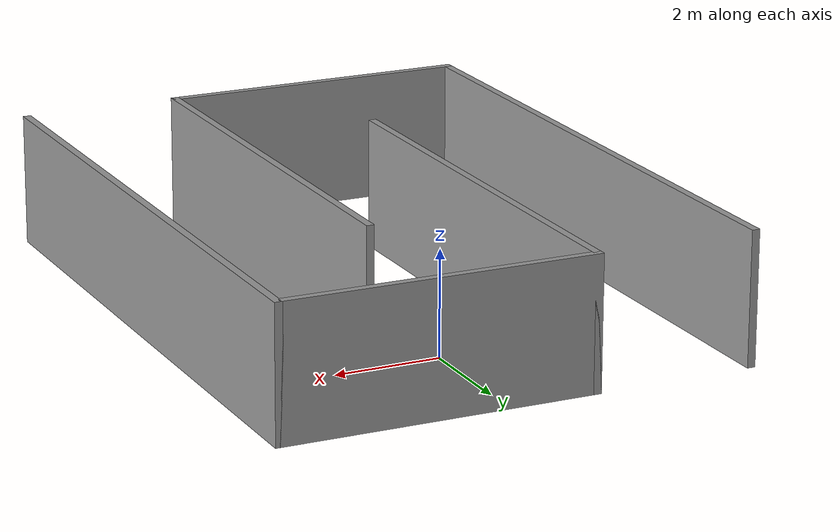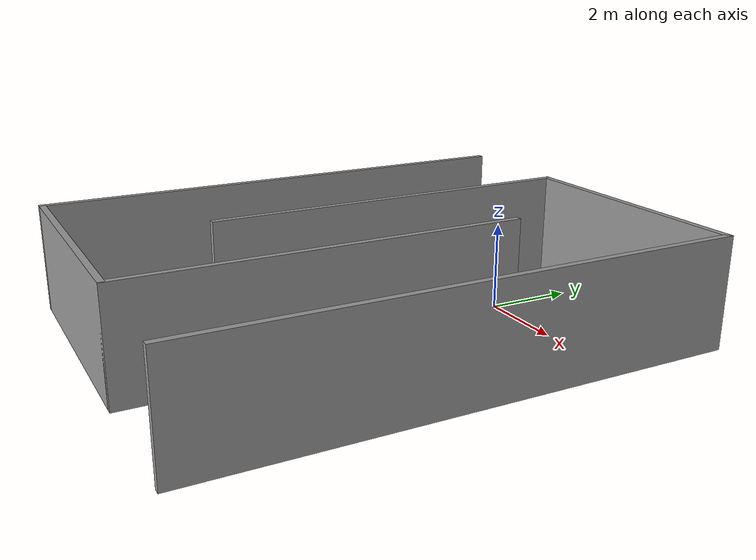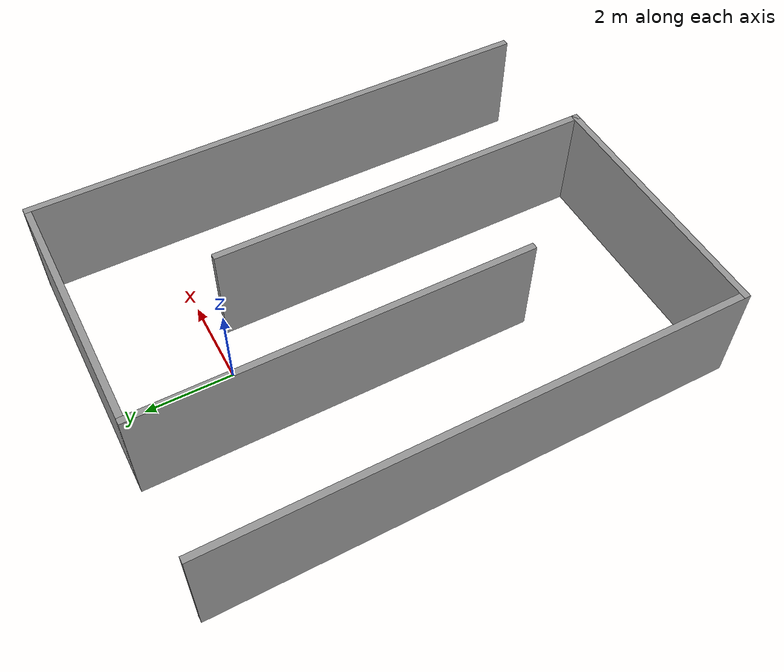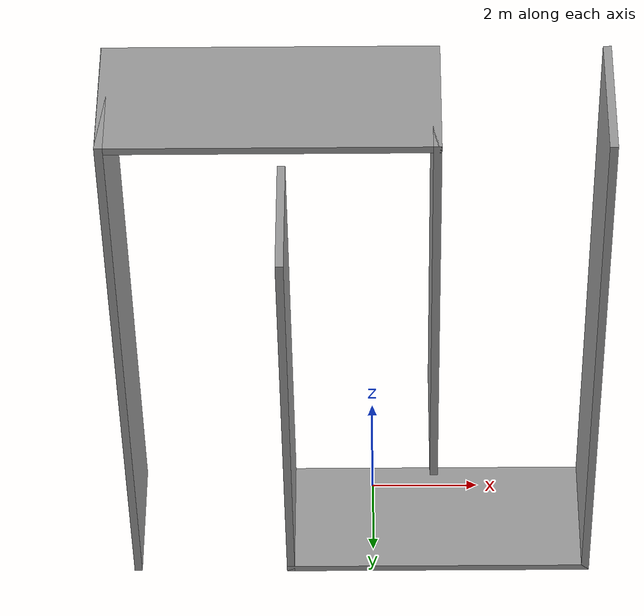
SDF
<?xml version='1.0'?>
<sdf version='1.7'>
  <model name='maze'>
    <pose>-0.233861 -3.3041 0 0 -0 0</pose>
    <link name='Wall_2'>
      <collision name='Wall_2_Collision'>
        <geometry>
          <box>
            <size>12 0.15 2.5</size>
          </box>
        </geometry>
        <pose>0 0 1.25 0 -0 0</pose>
      </collision>
      <visual name='Wall_2_Visual'>
        <pose>0 0 1.25 0 -0 0</pose>
        <geometry>
          <box>
            <size>12 0.15 2.5</size>
          </box>
        </geometry>
        <material>
          <script>
            <uri>file://media/materials/scripts/gazebo.material</uri>
            <name>Gazebo/Grey</name>
          </script>
          <ambient>1 1 1 1</ambient>
        </material>
        <meta>
          <layer>0</layer>
        </meta>
      </visual>
      <pose>-4.44243 -0.017881 0 0 -0 -1.5708</pose>
    </link>
    <link name='Wall_3'>
      <collision name='Wall_3_Collision'>
        <geometry>
          <box>
            <size>6 0.15 2.5</size>
          </box>
        </geometry>
        <pose>0 0 1.25 0 -0 0</pose>
      </collision>
      <visual name='Wall_3_Visual'>
        <pose>0 0 1.25 0 -0 0</pose>
        <geometry>
          <box>
            <size>6 0.15 2.5</size>
          </box>
        </geometry>
        <material>
          <script>
            <uri>file://media/materials/scripts/gazebo.material</uri>
            <name>Gazebo/Grey</name>
          </script>
          <ambient>1 1 1 1</ambient>
        </material>
        <meta>
          <layer>0</layer>
        </meta>
      </visual>
      <pose>-1.51743 -5.94288 0 0 -0 0</pose>
    </link>
    <link name='Wall_4'>
      <collision name='Wall_4_Collision'>
        <geometry>
          <box>
            <size>9 0.15 2.5</size>
          </box>
        </geometry>
        <pose>0 0 1.25 0 -0 0</pose>
      </collision>
      <visual name='Wall_4_Visual'>
        <pose>0 0 1.25 0 -0 0</pose>
        <geometry>
          <box>
            <size>9 0.15 2.5</size>
          </box>
        </geometry>
        <material>
          <script>
            <uri>file://media/materials/scripts/gazebo.material</uri>
            <name>Gazebo/Grey</name>
          </script>
          <ambient>1 1 1 1</ambient>
        </material>
        <meta>
          <layer>0</layer>
        </meta>
      </visual>
      <pose>1.40757 -1.51788 0 0 -0 1.5708</pose>
    </link>
    <link name='Wall_6'>
      <collision name='Wall_6_Collision'>
        <geometry>
          <box>
            <size>9 0.15 2.5</size>
          </box>
        </geometry>
        <pose>0 0 1.25 0 -0 0</pose>
      </collision>
      <visual name='Wall_6_Visual'>
        <pose>0 0 1.25 0 -0 0</pose>
        <geometry>
          <box>
            <size>9 0.15 2.5</size>
          </box>
        </geometry>
        <material>
          <script>
            <uri>file://media/materials/scripts/gazebo.material</uri>
            <name>Gazebo/Grey</name>
          </script>
          <ambient>1 1 1 1</ambient>
        </material>
        <meta>
          <layer>0</layer>
        </meta>
      </visual>
      <pose>-1.40757 1.51788 0 0 -0 1.5708</pose>
    </link>
    <link name='Wall_7'>
      <collision name='Wall_7_Collision'>
        <geometry>
          <box>
            <size>6 0.15 2.5</size>
          </box>
        </geometry>
        <pose>0 0 1.25 0 -0 0</pose>
      </collision>
      <visual name='Wall_7_Visual'>
        <pose>0 0 1.25 0 -0 0</pose>
        <geometry>
          <box>
            <size>6 0.15 2.5</size>
          </box>
        </geometry>
        <material>
          <script>
            <uri>file://media/materials/scripts/gazebo.material</uri>
            <name>Gazebo/Grey</name>
          </script>
          <ambient>1 1 1 1</ambient>
        </material>
        <meta>
          <layer>0</layer>
        </meta>
      </visual>
      <pose>1.51743 5.94288 0 0 -0 0</pose>
    </link>
    <link name='Wall_8'>
      <collision name='Wall_8_Collision'>
        <geometry>
          <box>
            <size>12 0.15 2.5</size>
          </box>
        </geometry>
        <pose>0 0 1.25 0 -0 0</pose>
      </collision>
      <visual name='Wall_8_Visual'>
        <pose>0 0 1.25 0 -0 0</pose>
        <geometry>
          <box>
            <size>12 0.15 2.5</size>
          </box>
        </geometry>
        <material>
          <script>
            <uri>file://media/materials/scripts/gazebo.material</uri>
            <name>Gazebo/Grey</name>
          </script>
          <ambient>1 1 1 1</ambient>
        </material>
        <meta>
          <layer>0</layer>
        </meta>
      </visual>
      <pose>4.44243 0.017881 0 0 -0 -1.5708</pose>
    </link>
    <static>1</static>
  </model>
</sdf>
